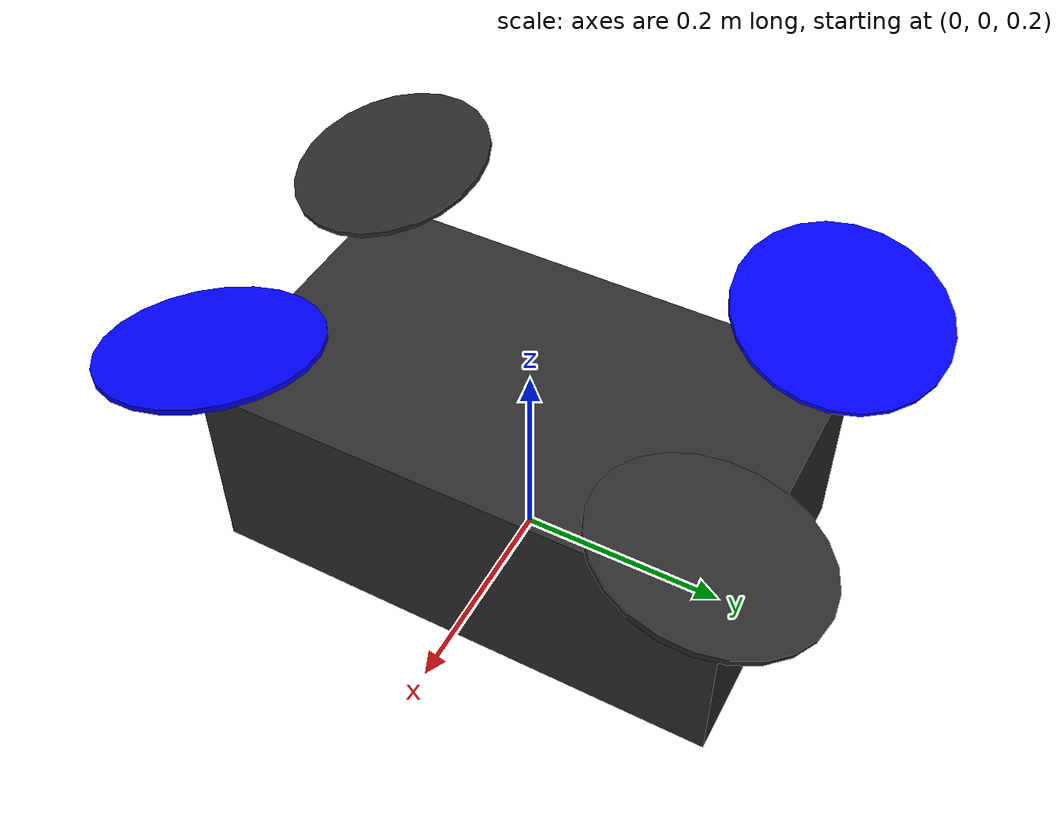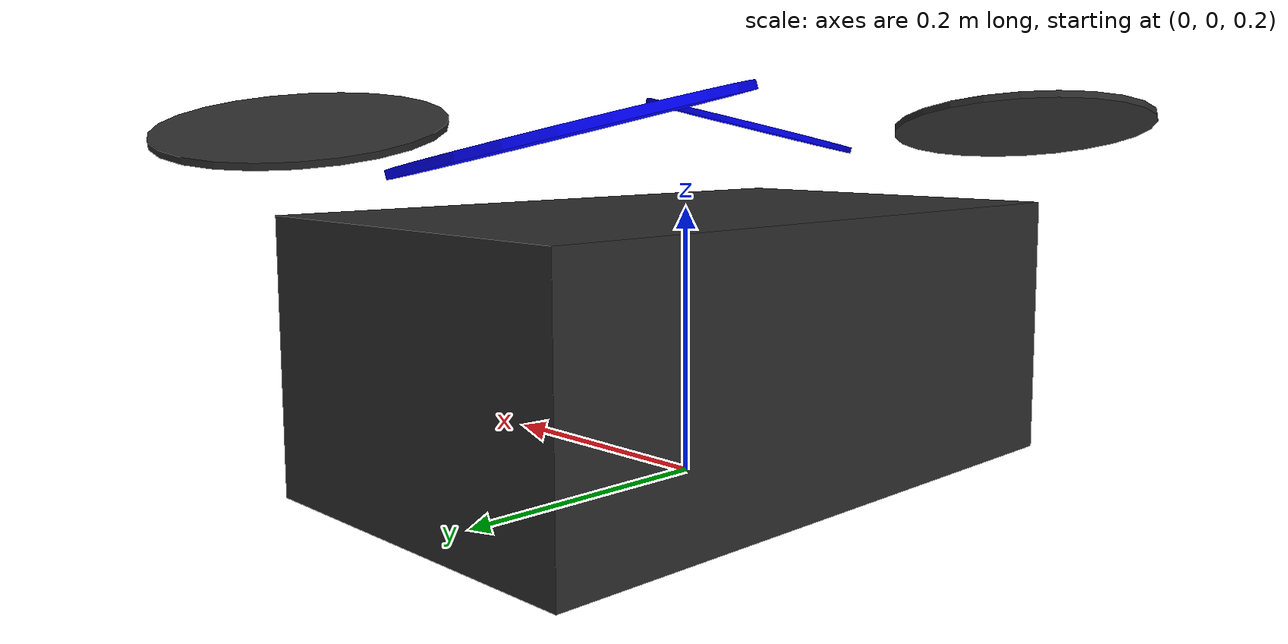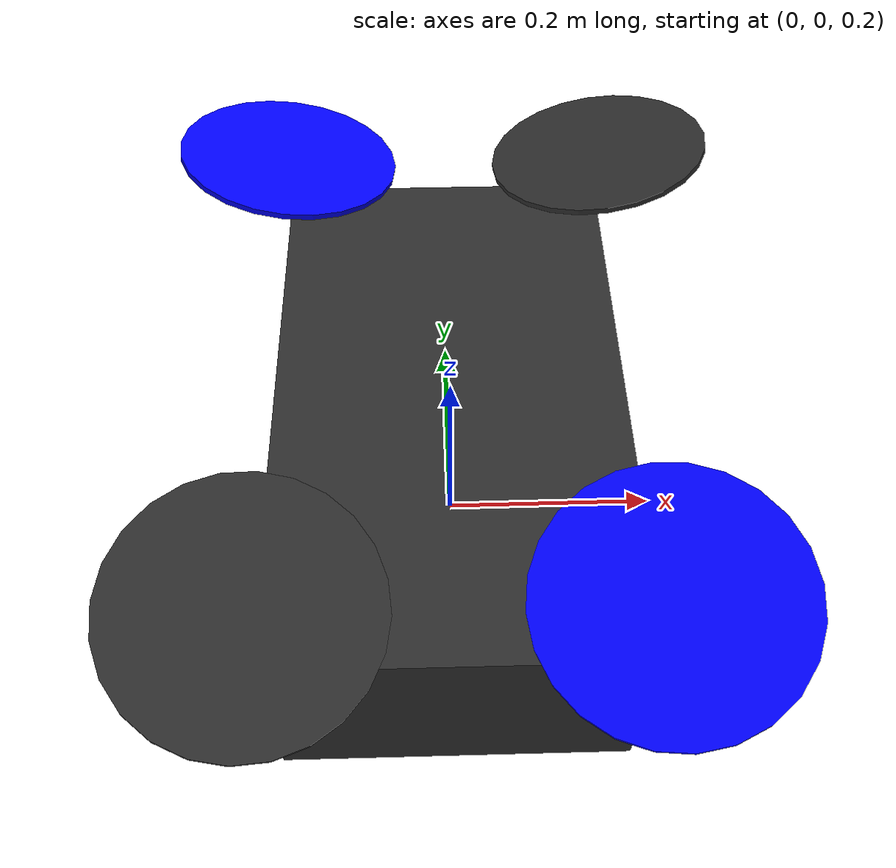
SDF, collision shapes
<?xml version="1.0"?>
<sdf version='1.10'>
  <model name='quadtailsitter'>
    <link name='base_link'>
      <pose>0 0 0.4 0 0 0</pose>
      <inertial>
        <pose>0 0 0.05 0 0 0</pose>
        <mass>1.6</mass>
        <inertia>
          <!-- Rectangular cuboid:
          Ixx = 1/12*(y^2+z^2)
          Iyy = 1/12*(x^2+z^2)
          Izz = 1/12*(x^2+y^2)
          -->
          <ixx>0.1133333333</ixx>
          <ixy>0</ixy>
          <ixz>0</ixz>
          <iyy>0.03020833333</iyy>
          <iyz>0</iyz>
          <izz>0.08354166667</izz>
        </inertia>
      </inertial>
      <collision name='base_link_collision'>
        <pose>0 0 -0.1 0 0 0</pose>
        <geometry>
          <box>
            <size>0.3 0.5 0.2</size>
          </box>
        </geometry>
        <surface>
          <contact>
            <ode>
              <max_vel>10</max_vel>
              <min_depth>0.01</min_depth>
            </ode>
          </contact>
          <friction>
            <ode />
          </friction>
        </surface>
      </collision>
      <visual name='base_link_visual'>
        <pose>-0.005 0 0 0 0 1.57</pose>
        <geometry>
          <mesh>
            <scale>0.001 0.001 0.001</scale>
            <uri>model://quadtailsitter/meshes/body.dae</uri>
          </mesh>
        </geometry>
        <material> <!-- DarkGrey-->
          <ambient>0.175 0.175 0.175 1.0</ambient>
          <diffuse>0.175 0.175 0.175 1.0</diffuse>
        </material>
      </visual>
      <gravity>1</gravity>
      <velocity_decay />
      <self_collide>0</self_collide>

      <sensor name="imu_sensor" type="imu">
        <pose degrees="true">0 0 0 180 -90 0</pose>
        <always_on>1</always_on>
        <update_rate>250</update_rate>
        <imu>
          <angular_velocity>
            <x>
              <noise type="gaussian">
                <mean>0</mean>
                <stddev>0.0003394</stddev>
                <dynamic_bias_stddev>3.8785e-05</dynamic_bias_stddev>
                <dynamic_bias_correlation_time>1000</dynamic_bias_correlation_time>
              </noise>
            </x>
            <y>
              <noise type="gaussian">
                <mean>0</mean>
                <stddev>0.0003394</stddev>
                <dynamic_bias_stddev>3.8785e-05</dynamic_bias_stddev>
                <dynamic_bias_correlation_time>1000</dynamic_bias_correlation_time>
              </noise>
            </y>
            <z>
              <noise type="gaussian">
                <mean>0</mean>
                <stddev>0.0003394</stddev>
                <dynamic_bias_stddev>3.8785e-05</dynamic_bias_stddev>
                <dynamic_bias_correlation_time>1000</dynamic_bias_correlation_time>
              </noise>
            </z>
          </angular_velocity>
          <linear_acceleration>
            <x>
              <noise type="gaussian">
                <mean>0</mean>
                <stddev>0.004</stddev>
                <dynamic_bias_stddev>0.006</dynamic_bias_stddev>
                <dynamic_bias_correlation_time>300</dynamic_bias_correlation_time>
              </noise>
            </x>
            <y>
              <noise type="gaussian">
                <mean>0</mean>
                <stddev>0.004</stddev>
                <dynamic_bias_stddev>0.006</dynamic_bias_stddev>
                <dynamic_bias_correlation_time>300</dynamic_bias_correlation_time>
              </noise>
            </y>
            <z>
              <noise type="gaussian">
                <mean>0</mean>
                <stddev>0.004</stddev>
                <dynamic_bias_stddev>0.006</dynamic_bias_stddev>
                <dynamic_bias_correlation_time>300</dynamic_bias_correlation_time>
              </noise>
            </z>
          </linear_acceleration>
        </imu>
      </sensor>
      <sensor name="air_pressure_sensor" type="air_pressure">
        <always_on>1</always_on>
        <update_rate>50</update_rate>
        <air_pressure>
          <pressure>
            <noise type="gaussian">
              <mean>0</mean>
              <stddev>0.01</stddev>
            </noise>
          </pressure>
        </air_pressure>
      </sensor>
      <sensor name="magnetometer_sensor" type="magnetometer">
        <always_on>1</always_on>
        <update_rate>100</update_rate>
        <magnetometer>
          <!-- TODO: update to fix units and coordinate system when we move past Harmonic -->
          <!-- See https://github.com/gazebosim/gz-sim/pull/2460 -->
          <!-- 3mgauss RMS: NOTE: noise is in tesla but sensor reports data in gauss -->
          <!-- Noise modeled after IIS2MDC -->
          <x>
            <noise type="gaussian">
              <stddev>0.0001</stddev>
            </noise>
          </x>
          <y>
            <noise type="gaussian">
              <stddev>0.0001</stddev>
            </noise>
          </y>
          <z>
            <noise type="gaussian">
              <stddev>0.0001</stddev>
            </noise>
          </z>
        </magnetometer>
      </sensor>
      <sensor name="navsat_sensor" type="navsat">
        <always_on>1</always_on>
        <update_rate>30</update_rate>
      </sensor>
    </link>

    <link name='rotor_0'>
      <pose>0.145 -0.23 0.46 0.17 -0.17 0</pose>
      <inertial>
        <pose>0 0 0 0 0 0</pose>
        <mass>0.005</mass>
        <inertia>
          <ixx>9.75e-07</ixx>
          <ixy>0</ixy>
          <ixz>0</ixz>
          <iyy>0.000166704</iyy>
          <iyz>0</iyz>
          <izz>0.000167604</izz>
        </inertia>
      </inertial>
      <collision name='rotor_0_collision'>
        <pose>0 0 0 0 0 0</pose>
        <geometry>
          <cylinder>
            <length>0.005</length>
            <radius>0.1</radius>
          </cylinder>
        </geometry>
        <surface>
          <contact>
            <ode />
          </contact>
          <friction>
            <ode />
          </friction>
        </surface>
      </collision>
      <visual name='rotor_0_visual'>
        <pose>0 0 0 0 0 0</pose>
        <geometry>
          <mesh>
            <scale>1 1 1</scale>
            <uri>model://quadtailsitter/meshes/iris_prop_ccw.dae</uri>
          </mesh>
        </geometry>
        <material>  <!-- Blue -->
          <ambient>0 0 1 1.0</ambient>
          <diffuse>0 0 1 1.0</diffuse>
        </material>
      </visual>
      <gravity>1</gravity>
      <velocity_decay />
      <self_collide>0</self_collide>
    </link>
    <joint name='rotor_0_joint' type='revolute'>
      <child>rotor_0</child>
      <parent>base_link</parent>
      <axis>
        <xyz>0 0 1</xyz>
        <limit>
          <lower>-1e+16</lower>
          <upper>1e+16</upper>
        </limit>
        <dynamics>
          <spring_reference>0</spring_reference>
          <spring_stiffness>0</spring_stiffness>
        </dynamics>
      </axis>
    </joint>
    <link name='rotor_1'>
      <pose>-0.145 0.23 0.46 -0.17 0.17 0</pose>
      <inertial>
        <pose>0 0 0 0 0 0</pose>
        <mass>0.005</mass>
        <inertia>
          <ixx>9.75e-07</ixx>
          <ixy>0</ixy>
          <ixz>0</ixz>
          <iyy>0.000166704</iyy>
          <iyz>0</iyz>
          <izz>0.000167604</izz>
        </inertia>
      </inertial>
      <collision name='rotor_1_collision'>
        <pose>0 0 0 0 0 0</pose>
        <geometry>
          <cylinder>
            <length>0.005</length>
            <radius>0.1</radius>
          </cylinder>
        </geometry>
        <surface>
          <contact>
            <ode />
          </contact>
          <friction>
            <ode />
          </friction>
        </surface>
      </collision>
      <visual name='rotor_1_visual'>
        <pose>0 0 0 0 0 0</pose>
        <geometry>
          <mesh>
            <scale>1 1 1</scale>
            <uri>model://quadtailsitter/meshes/iris_prop_ccw.dae</uri>
          </mesh>
        </geometry>
        <material>  <!-- Blue -->
          <ambient>0 0 1 1.0</ambient>
          <diffuse>0 0 1 1.0</diffuse>
        </material>
      </visual>
      <gravity>1</gravity>
      <velocity_decay />
      <self_collide>0</self_collide>
    </link>
    <joint name='rotor_1_joint' type='revolute'>
      <child>rotor_1</child>
      <parent>base_link</parent>
      <axis>
        <xyz>0 0 1</xyz>
        <limit>
          <lower>-1e+16</lower>
          <upper>1e+16</upper>
        </limit>
        <dynamics>
          <spring_reference>0</spring_reference>
          <spring_stiffness>0</spring_stiffness>
        </dynamics>
      </axis>
    </joint>
    <link name='rotor_2'>
      <pose>0.145 0.23 0.46 -0.17 -0.17 0</pose>
      <inertial>
        <pose>0 0 0 0 0 0</pose>
        <mass>0.005</mass>
        <inertia>
          <ixx>9.75e-07</ixx>
          <ixy>0</ixy>
          <ixz>0</ixz>
          <iyy>0.000166704</iyy>
          <iyz>0</iyz>
          <izz>0.000167604</izz>
        </inertia>
      </inertial>
      <collision name='rotor_2_collision'>
        <pose>0 0 0 0 0 0</pose>
        <geometry>
          <cylinder>
            <length>0.005</length>
            <radius>0.1</radius>
          </cylinder>
        </geometry>
        <surface>
          <contact>
            <ode />
          </contact>
          <friction>
            <ode />
          </friction>
        </surface>
      </collision>
      <visual name='rotor_2_visual'>
        <pose>0 0 0 0 0 0</pose>
        <geometry>
          <mesh>
            <scale>1 1 1</scale>
            <uri>model://quadtailsitter/meshes/iris_prop_cw.dae</uri>
          </mesh>
        </geometry>
        <material>  <!-- Grey -->
          <ambient>0.175 0.175 0.175 1.0</ambient>
          <diffuse>0.175 0.175 0.175 1.0</diffuse>
        </material>
      </visual>
      <gravity>1</gravity>
      <velocity_decay />
      <self_collide>0</self_collide>
    </link>
    <joint name='rotor_2_joint' type='revolute'>
      <child>rotor_2</child>
      <parent>base_link</parent>
      <axis>
        <xyz>0 0 1</xyz>
        <limit>
          <lower>-1e+16</lower>
          <upper>1e+16</upper>
        </limit>
        <dynamics>
          <spring_reference>0</spring_reference>
          <spring_stiffness>0</spring_stiffness>
        </dynamics>
      </axis>
    </joint>
    <link name='rotor_3'>
      <pose>-0.145 -0.23 0.46 0.17 0.17 0</pose>
      <inertial>
        <pose>0 0 0 0 0 0</pose>
        <mass>0.005</mass>
        <inertia>
          <ixx>9.75e-07</ixx>
          <ixy>0</ixy>
          <ixz>0</ixz>
          <iyy>0.000166704</iyy>
          <iyz>0</iyz>
          <izz>0.000167604</izz>
        </inertia>
      </inertial>
      <collision name='rotor_3_collision'>
        <pose>0 0 0 0 0 0</pose>
        <geometry>
          <cylinder>
            <length>0.005</length>
            <radius>0.1</radius>
          </cylinder>
        </geometry>
        <surface>
          <contact>
            <ode />
          </contact>
          <friction>
            <ode />
          </friction>
        </surface>
      </collision>
      <visual name='rotor_3_visual'>
        <pose>0 0 0 0 0 0</pose>
        <geometry>
          <mesh>
            <scale>1 1 1</scale>
            <uri>model://quadtailsitter/meshes/iris_prop_cw.dae</uri>
          </mesh>
        </geometry>
        <material>  <!-- Grey -->
          <ambient>0.175 0.175 0.175 1.0</ambient>
          <diffuse>0.175 0.175 0.175 1.0</diffuse>
        </material>
      </visual>
      <gravity>1</gravity>
      <velocity_decay />
      <self_collide>0</self_collide>
    </link>
    <joint name='rotor_3_joint' type='revolute'>
      <child>rotor_3</child>
      <parent>base_link</parent>
      <axis>
        <xyz>0 0 1</xyz>
        <limit>
          <lower>-1e+16</lower>
          <upper>1e+16</upper>
        </limit>
        <dynamics>
          <spring_reference>0</spring_reference>
          <spring_stiffness>0</spring_stiffness>
        </dynamics>
      </axis>
    </joint>
    <plugin filename="gz-sim-advanced-lift-drag-system" name="gz::sim::systems::AdvancedLiftDrag">
      <a0>0.0</a0>
      <CL0>0.15188</CL0>
      <AR>8.5</AR>
      <eff>0.97</eff>
      <CLa>5.015</CLa>
      <cda>1.5</cda>
      <CD0>0.15</CD0>
      <Cem0>0.075</Cem0>
      <Cema>-0.463966</Cema>
      <CYb>-0.258244</CYb>
      <Cellb>-0.039250</Cellb>
      <Cenb>0.100826</Cenb>
      <CDp>0.0</CDp>
      <CYp>0.065861</CYp>
      <CLp>0.0</CLp>
      <Cellp>-0.487407</Cellp>
      <Cemp>0.0</Cemp>
      <Cenp>-0.040416</Cenp>
      <CDq>0.055166</CDq>
      <CYq>0.0</CYq>
      <CLq>7.971792</CLq>
      <Cellq>0.0</Cellq>
      <Cemq>-12.140140</Cemq>
      <Cenq>0.0</Cenq>
      <CDr>0.0</CDr>
      <CYr>0.230299</CYr>
      <CLr>0.0</CLr>
      <Cellr>0.078165</Cellr>
      <Cemr>0.0</Cemr>
      <Cenr>-0.089947</Cenr>
      <alpha_stall>0.3391428111</alpha_stall>
      <CLa_stall>-3.85</CLa_stall>
      <CDa_stall>-0.9233984055</CDa_stall>
      <Cema_stall>0</Cema_stall>
      <ref_pt>-0.12 0.0 0.0</ref_pt>
      <area>0.4</area>
      <mac>0.22</mac>
      <air_density>1.2041</air_density>
      <forward>0 0 1</forward>
      <upward>-1 0 0</upward>
      <link_name>base_link</link_name>
      <num_ctrl_surfaces>0</num_ctrl_surfaces>
    </plugin>
    <plugin filename="gz-sim-multicopter-motor-model-system"
      name="gz::sim::systems::MulticopterMotorModel">
      <jointName>rotor_0_joint</jointName>
      <linkName>rotor_0</linkName>
      <turningDirection>ccw</turningDirection>
      <timeConstantUp>0.0125</timeConstantUp>
      <timeConstantDown>0.025</timeConstantDown>
      <maxRotVelocity>1200</maxRotVelocity>
      <motorConstant>8.54858e-06</motorConstant>
      <momentConstant>0.06</momentConstant>
      <commandSubTopic>command/motor_speed</commandSubTopic>
      <robotNamespace>quadtailsitter</robotNamespace>
      <actuator_number>0</actuator_number>
      <rotorDragCoefficient>8.06428e-05</rotorDragCoefficient>
      <rollingMomentCoefficient>1e-06</rollingMomentCoefficient>
      <rotorVelocitySlowdownSim>5</rotorVelocitySlowdownSim>
      <motorType>velocity</motorType>
    </plugin>
    <plugin filename="gz-sim-multicopter-motor-model-system"
      name="gz::sim::systems::MulticopterMotorModel">
      <jointName>rotor_1_joint</jointName>
      <linkName>rotor_1</linkName>
      <turningDirection>ccw</turningDirection>
      <timeConstantUp>0.0125</timeConstantUp>
      <timeConstantDown>0.025</timeConstantDown>
      <maxRotVelocity>1200</maxRotVelocity>
      <motorConstant>8.54858e-06</motorConstant>
      <momentConstant>0.06</momentConstant>
      <commandSubTopic>command/motor_speed</commandSubTopic>
      <robotNamespace>quadtailsitter</robotNamespace>
      <actuator_number>1</actuator_number>
      <rotorDragCoefficient>8.06428e-05</rotorDragCoefficient>
      <rollingMomentCoefficient>1e-06</rollingMomentCoefficient>
      <rotorVelocitySlowdownSim>5</rotorVelocitySlowdownSim>
      <motorType>velocity</motorType>
    </plugin>
    <plugin filename="gz-sim-multicopter-motor-model-system"
      name="gz::sim::systems::MulticopterMotorModel">
      <jointName>rotor_2_joint</jointName>
      <linkName>rotor_2</linkName>
      <turningDirection>cw</turningDirection>
      <timeConstantUp>0.0125</timeConstantUp>
      <timeConstantDown>0.025</timeConstantDown>
      <maxRotVelocity>1200</maxRotVelocity>
      <motorConstant>8.54858e-06</motorConstant>
      <momentConstant>0.06</momentConstant>
      <commandSubTopic>command/motor_speed</commandSubTopic>
      <robotNamespace>quadtailsitter</robotNamespace>
      <actuator_number>2</actuator_number>
      <rotorDragCoefficient>8.06428e-05</rotorDragCoefficient>
      <rollingMomentCoefficient>1e-06</rollingMomentCoefficient>
      <rotorVelocitySlowdownSim>5</rotorVelocitySlowdownSim>
      <motorType>velocity</motorType>
    </plugin>
    <plugin filename="gz-sim-multicopter-motor-model-system"
      name="gz::sim::systems::MulticopterMotorModel">
      <jointName>rotor_3_joint</jointName>
      <linkName>rotor_3</linkName>
      <turningDirection>cw</turningDirection>
      <timeConstantUp>0.0125</timeConstantUp>
      <timeConstantDown>0.025</timeConstantDown>
      <maxRotVelocity>1200</maxRotVelocity>
      <motorConstant>8.54858e-06</motorConstant>
      <momentConstant>0.06</momentConstant>
      <commandSubTopic>command/motor_speed</commandSubTopic>
      <robotNamespace>quadtailsitter</robotNamespace>
      <actuator_number>3</actuator_number>
      <rotorDragCoefficient>8.06428e-05</rotorDragCoefficient>
      <rollingMomentCoefficient>1e-06</rollingMomentCoefficient>
      <rotorVelocitySlowdownSim>5</rotorVelocitySlowdownSim>
      <motorType>velocity</motorType>
    </plugin>

    <static>0</static>
  </model>
</sdf>
